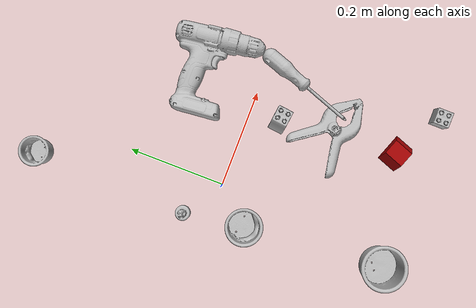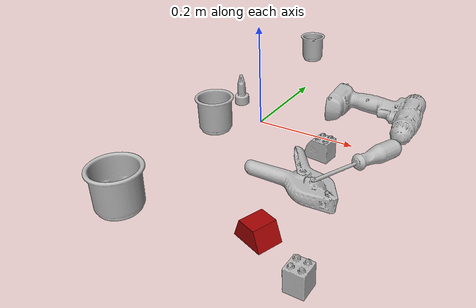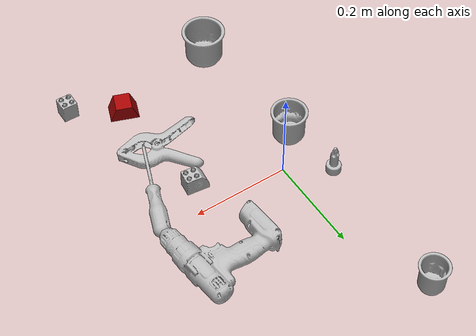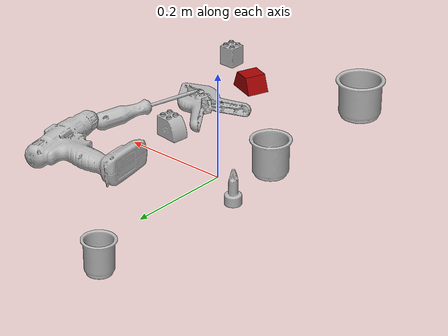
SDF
<sdf version="1.4">
  <world name="default">
    <light name="light1" type="point">
      <pose>0 0 1 0 0 0</pose>
      <diffuse>3 3 3 1</diffuse>
      <specular>3 3 3 1</specular>
    </light>
    <light name="light2" type="point">
      <pose>0 0.5 2 0 0 0</pose>
      <diffuse>1 1 1 1</diffuse>
      <specular>1 1 1 1</specular>
    </light>
    <light name="light3" type="point">
      <pose>0 0.5 2 0 0 0</pose>
      <diffuse>3 3 3 1</diffuse>
      <specular>3 3 3 1</specular>
    </light>
    <scene>
      <ambient>0.7 0.7 0.7</ambient>
    </scene>
    <model name="cup1">
      <link name="link_cup1">
        <collision name="default">
          <geometry>
            <mesh>
              <uri>model://b_cups/collision_meshes/collision.obj</uri>
              <scale>1.0 1.0 1.0</scale>
            </mesh>
          </geometry>
          <surface>
            <friction>
              <ode>
                <mu>0.5</mu>
                <mu2>0.5</mu2>
              </ode>
            </friction>
          <contact>
        <ode>
            <max_vel>0</max_vel>
            <min_depth>0.0001</min_depth>
            <kp>1e8</kp>
        </ode>
    </contact></surface>
        </collision>
        <visual name="default">
          <geometry>
            <mesh>
              <uri>model://b_cups/visual_meshes/visual.dae</uri>
              <scale>1.0 1.0 1.0</scale>
            </mesh>
          </geometry>
        </visual>
        <inertial>
          <mass>0.048613063991069794</mass>
          <pose>0.0005182003951631486 0.0018058597343042493 -0.0013381808530539274 0.11356326710502956 0.03872484102688303 -0.34569225342860055</pose>
          <inertia>
            <ixx>3.1820662e-05</ixx>
            <iyy>3.121653e-05</iyy>
            <izz>2.6776484e-05</izz>
            <ixy>0</ixy>
            <ixz>0</ixz>
            <iyz>0</iyz>
          </inertia>
        </inertial>
      </link>
      <pose>-0.06921809911727905 0.3694337010383606 0.03199625015258789 -0.007620036234296579 -0.003874574507241487 0.8899992506936225</pose>
    </model>
    <model name="cup2">
      <link name="link_cup2">
        <collision name="default">
          <geometry>
            <mesh>
              <uri>model://e_cups/collision_meshes/collision.obj</uri>
              <scale>1.0 1.0 1.0</scale>
            </mesh>
          </geometry>
          <surface>
            <friction>
              <ode>
                <mu>0.5</mu>
                <mu2>0.5</mu2>
              </ode>
            </friction>
          <contact>
        <ode>
            <max_vel>0</max_vel>
            <min_depth>0.0001</min_depth>
            <kp>1e8</kp>
        </ode>
    </contact></surface>
        </collision>
        <visual name="default">
          <geometry>
            <mesh>
              <uri>model://e_cups/visual_meshes/visual.dae</uri>
              <scale>1.0 1.0 1.0</scale>
            </mesh>
          </geometry>
        </visual>
        <inertial>
          <mass>0.07592208683490753</mass>
          <pose>0.0011355738388374448 0.002879784908145666 -0.003882972290739417 0.695241209711482 0.0876783799590152 -0.5235234031188288</pose>
          <inertia>
            <ixx>6.6944274e-05</ixx>
            <iyy>6.996636e-05</iyy>
            <izz>6.400647e-05</izz>
            <ixy>0</ixy>
            <ixz>0</ixz>
            <iyz>0</iyz>
          </inertia>
        </inertial>
      </link>
      <pose>-0.06206166371703148 -0.06964539736509323 0.0355997309088707 0.00016231972334537312 -0.0002053665297992044 -2.902030941911946</pose>
    </model>
    <model name="cup3">
      <link name="link_cup3">
        <collision name="default">
          <geometry>
            <mesh>
              <uri>model://h_cups/collision_meshes/collision.obj</uri>
              <scale>1.0 1.0 1.0</scale>
            </mesh>
          </geometry>
          <surface>
            <friction>
              <ode>
                <mu>0.5</mu>
                <mu2>0.5</mu2>
              </ode>
            </friction>
          <contact>
        <ode>
            <max_vel>0</max_vel>
            <min_depth>0.0001</min_depth>
            <kp>1e8</kp>
        </ode>
    </contact></surface>
        </collision>
        <visual name="default">
          <geometry>
            <mesh>
              <uri>model://h_cups/visual_meshes/visual.dae</uri>
              <scale>1.0 1.0 1.0</scale>
            </mesh>
          </geometry>
        </visual>
        <inertial>
          <mass>0.07054857164621353</mass>
          <pose>-2.7030857381760143e-05 0.0002301865170011297 -0.0018405391601845622 -0.024362378998248252 0.0654525662963329 0.12884761756284485</pose>
          <inertia>
            <ixx>9.1110225e-05</ixx>
            <iyy>9.002296e-05</iyy>
            <izz>9.5549614e-05</izz>
            <ixy>0</ixy>
            <ixz>0</ixz>
            <iyz>0</iyz>
          </inertia>
        </inertial>
      </link>
      <pose>-0.03940672427415848 -0.35366150736808777 0.037758003920316696 3.676635673973873e-07 9.787589677493503e-07 -1.0156418868619257</pose>
    </model>
    <model name="toy1">
      <link name="link_toy1">
        <collision name="default">
          <geometry>
            <mesh>
              <uri>model://f_lego_duplo/collision_meshes/collision.obj</uri>
              <scale>1.0 1.0 1.0</scale>
            </mesh>
          </geometry>
          <surface>
            <friction>
              <ode>
                <mu>0.5</mu>
                <mu2>0.5</mu2>
              </ode>
            </friction>
          <contact>
        <ode>
            <max_vel>0</max_vel>
            <min_depth>0.0001</min_depth>
            <kp>1e8</kp>
        </ode>
    </contact></surface>
        </collision>
        <visual name="default">
          <geometry>
            <mesh>
              <uri>model://f_lego_duplo/visual_meshes/visual.dae</uri>
              <scale>1.0 1.0 1.0</scale>
            </mesh>
          </geometry>
        </visual>
        <inertial>
          <mass>0.027637142688035965</mass>
          <pose>2.3694037736277096e-05 0.0001339315203949809 0.0018837873358279467 0.029838580482088747 -0.014425059949813135 -0.6756637855802661</pose>
          <inertia>
            <ixx>5.8398805e-06</ixx>
            <iyy>5.8919077e-06</iyy>
            <izz>5.069264e-06</izz>
            <ixy>0</ixy>
            <ixz>0</ixz>
            <iyz>0</iyz>
          </inertia>
        </inertial>
      </link>
      <pose>0.2835690677165985 -0.3656497597694397 0.021871007978916168 -9.034510911496669e-07 7.958373218522501e-07 -0.007178214448827588</pose>
    </model>
    <model name="toy2">
      <link name="link_toy2">
        <collision name="default">
          <geometry>
            <mesh>
              <uri>model://d_toy_airplane/collision_meshes/collision.obj</uri>
              <scale>1.0 1.0 1.0</scale>
            </mesh>
          </geometry>
          <surface>
            <friction>
              <ode>
                <mu>0.5</mu>
                <mu2>0.5</mu2>
              </ode>
            </friction>
          <contact>
        <ode>
            <max_vel>0</max_vel>
            <min_depth>0.0001</min_depth>
            <kp>1e8</kp>
        </ode>
    </contact></surface>
        </collision>
        <visual name="default">
          <geometry>
            <mesh>
              <uri>model://d_toy_airplane/visual_meshes/visual.dae</uri>
              <scale>1.0 1.0 1.0</scale>
            </mesh>
          </geometry>
        </visual>
        <inertial>
          <mass>0.017859498038887978</mass>
          <pose>9.410335042048246e-05 -5.809318827232346e-05 -0.011728094890713692 0.0002667298520076861 0.004679004392369758 0.5194091511239993</pose>
          <inertia>
            <ixx>5.35393e-06</ixx>
            <iyy>5.3579683e-06</iyy>
            <izz>1.6163864e-06</izz>
            <ixy>0</ixy>
            <ixz>0</ixz>
            <iyz>0</iyz>
          </inertia>
        </inertial>
      </link>
      <pose>-0.08276587724685669 0.054963741451501846 0.033339403569698334 0.00020686475937487504 -5.2179783026435124e-05 -2.548350604926208</pose>
    </model>
    <model name="toy3">
      <link name="link_toy3">
        <collision name="default">
          <geometry>
            <mesh>
              <uri>model://prism/collision_meshes/collision.obj</uri>
              <scale>0.5 0.5 0.5</scale>
            </mesh>
          </geometry>
          <surface>
            <friction>
              <ode>
                <mu>0.5</mu>
                <mu2>0.5</mu2>
              </ode>
            </friction>
          <contact>
        <ode>
            <max_vel>0</max_vel>
            <min_depth>0.0001</min_depth>
            <kp>1e8</kp>
        </ode>
    </contact></surface>
        </collision>
        <visual name="default">
          <geometry>
            <mesh>
              <uri>model://prism/visual_meshes/visual.dae</uri>
              <scale>0.5 0.5 0.5</scale>
            </mesh>
          </geometry>
        </visual>
        <inertial>
          <mass>0.04761093109846115</mass>
          <pose>-4.92679828312248e-05 -2.480786349678965e-07 -0.001693455153144896 0.0 0.006559181231804993 0.0</pose>
          <inertia>
            <ixx>1.074207e-05</ixx>
            <iyy>1.2981929e-05</iyy>
            <izz>1.590131e-05</izz>
            <ixy>0</ixy>
            <ixz>0</ixz>
            <iyz>0</iyz>
          </inertia>
        </inertial>
      </link>
      <pose>0.1857929527759552 -0.3081788420677185 0.01608499512076378 2.189051093891324e-08 -5.331182501250577e-08 -0.3559279110201543</pose>
    </model>
    <model name="toy4">
      <link name="link_toy4">
        <collision name="default">
          <geometry>
            <mesh>
              <uri>model://d_lego_duplo/collision_meshes/collision.obj</uri>
              <scale>1.0 1.0 1.0</scale>
            </mesh>
          </geometry>
          <surface>
            <friction>
              <ode>
                <mu>0.5</mu>
                <mu2>0.5</mu2>
              </ode>
            </friction>
          <contact>
        <ode>
            <max_vel>0</max_vel>
            <min_depth>0.0001</min_depth>
            <kp>1e8</kp>
        </ode>
    </contact></surface>
        </collision>
        <visual name="default">
          <geometry>
            <mesh>
              <uri>model://d_lego_duplo/visual_meshes/visual.dae</uri>
              <scale>1.0 1.0 1.0</scale>
            </mesh>
          </geometry>
        </visual>
        <inertial>
          <mass>0.06000049039721489</mass>
          <pose>0.0028305640444159508 0.0001636611996218562 0.000858980929479003 0.08010949527318252 -0.38355210287845315 0.0010297055105996263</pose>
          <inertia>
            <ixx>1.1615211e-05</ixx>
            <iyy>1.6485134e-05</iyy>
            <izz>1.5897598e-05</izz>
            <ixy>0</ixy>
            <ixz>0</ixz>
            <iyz>0</iyz>
          </inertia>
        </inertial>
      </link>
      <pose>0.16452592611312866 -0.06281034648418427 0.021739870309829712 5.0233737482967346e-05 4.1738867920760366e-05 -0.11565015703857463</pose>
    </model>
    <model name="hardware1">
      <link name="link_hardware1">
        <collision name="default">
          <geometry>
            <mesh>
              <uri>model://phillips_screwdriver/collision_meshes/collision.obj</uri>
              <scale>1.0 1.0 1.0</scale>
            </mesh>
          </geometry>
          <surface>
            <friction>
              <ode>
                <mu>0.5</mu>
                <mu2>0.5</mu2>
              </ode>
            </friction>
          <contact>
        <ode>
            <max_vel>0</max_vel>
            <min_depth>0.0001</min_depth>
            <kp>1e8</kp>
        </ode>
    </contact></surface>
        </collision>
        <visual name="default">
          <geometry>
            <mesh>
              <uri>model://phillips_screwdriver/visual_meshes/visual.dae</uri>
              <scale>1.0 1.0 1.0</scale>
            </mesh>
          </geometry>
        </visual>
        <inertial>
          <mass>0.11704345047473907</mass>
          <pose>-0.04777182638645172 0.0010362302418798208 -0.0004555549821816385 -0.1571668982332543 0.0058509943133797405 -0.002156735283865719</pose>
          <inertia>
            <ixx>1.3751404e-05</ixx>
            <iyy>0.00017241857</iyy>
            <izz>0.0001725651</izz>
            <ixy>0</ixy>
            <ixz>0</ixz>
            <iyz>0</iyz>
          </inertia>
        </inertial>
      </link>
      <pose>0.24788253009319305 -0.08166538178920746 0.023402852937579155 2.2849175403307482 -0.07999766610666269 -1.926767281570354</pose>
    </model>
    <model name="hardware2">
      <link name="link_hardware2">
        <collision name="default">
          <geometry>
            <mesh>
              <uri>model://large_clamp/collision_meshes/collision.obj</uri>
              <scale>1.0 1.0 1.0</scale>
            </mesh>
          </geometry>
          <surface>
            <friction>
              <ode>
                <mu>0.5</mu>
                <mu2>0.5</mu2>
              </ode>
            </friction>
          <contact>
        <ode>
            <max_vel>0</max_vel>
            <min_depth>0.0001</min_depth>
            <kp>1e8</kp>
        </ode>
    </contact></surface>
        </collision>
        <visual name="default">
          <geometry>
            <mesh>
              <uri>model://large_clamp/visual_meshes/visual.dae</uri>
              <scale>1.0 1.0 1.0</scale>
            </mesh>
          </geometry>
        </visual>
        <inertial>
          <mass>0.18953841924667358</mass>
          <pose>0.00636935792863369 0.0003585682134144008 -0.00018398056272417307 -0.002133075536327147 0.009671586607470332 0.026633167384546762</pose>
          <inertia>
            <ixx>0.00016722476</ixx>
            <iyy>0.0003175689</iyy>
            <izz>0.00045940367</izz>
            <ixy>0</ixy>
            <ixz>0</ixz>
            <iyz>0</iyz>
          </inertia>
        </inertial>
      </link>
      <pose>0.18319138884544373 -0.1710667759180069 0.01856609806418419 -0.08513602236699343 0.04675998873849829 -0.41630863035851573</pose>
    </model>
    <model name="hardware3">
      <link name="link_hardware3">
        <collision name="default">
          <geometry>
            <mesh>
              <uri>model://power_drill/collision_meshes/collision.obj</uri>
              <scale>1.0 1.0 1.0</scale>
            </mesh>
          </geometry>
          <surface>
            <friction>
              <ode>
                <mu>0.5</mu>
                <mu2>0.5</mu2>
              </ode>
            </friction>
          <contact>
        <ode>
            <max_vel>0</max_vel>
            <min_depth>0.0001</min_depth>
            <kp>1e8</kp>
        </ode>
    </contact></surface>
        </collision>
        <visual name="default">
          <geometry>
            <mesh>
              <uri>model://power_drill/visual_meshes/visual.dae</uri>
              <scale>1.0 1.0 1.0</scale>
            </mesh>
          </geometry>
        </visual>
        <inertial>
          <mass>0.5207164287567139</mass>
          <pose>-0.014780543744564056 0.014369428157806396 0.0012414171360433102 0.004609162650930739 0.004073022346756156 -0.183626968168983</pose>
          <inertia>
            <ixx>0.0021219437</ixx>
            <iyy>0.00083487434</iyy>
            <izz>0.002802402</izz>
            <ixy>0</ixy>
            <ixz>0</ixz>
            <iyz>0</iyz>
          </inertia>
        </inertial>
      </link>
      <pose>0.20545026659965515 0.09987223893404007 0.027312448248267174 -0.030306035140316396 -0.047252889204711435 -1.4535173786886493</pose>
    </model>
  <physics type="ode">
      <max_contacts>50</max_contacts>
      <ode>
        <solver>
          <type>quick</type>
          <iters>75</iters>
        </solver>
        <constraints>
          <contact_max_correcting_vel>0</contact_max_correcting_vel>
          <contact_surface_layer>0</contact_surface_layer>
        </constraints>
      </ode>
    </physics></world>
</sdf>
